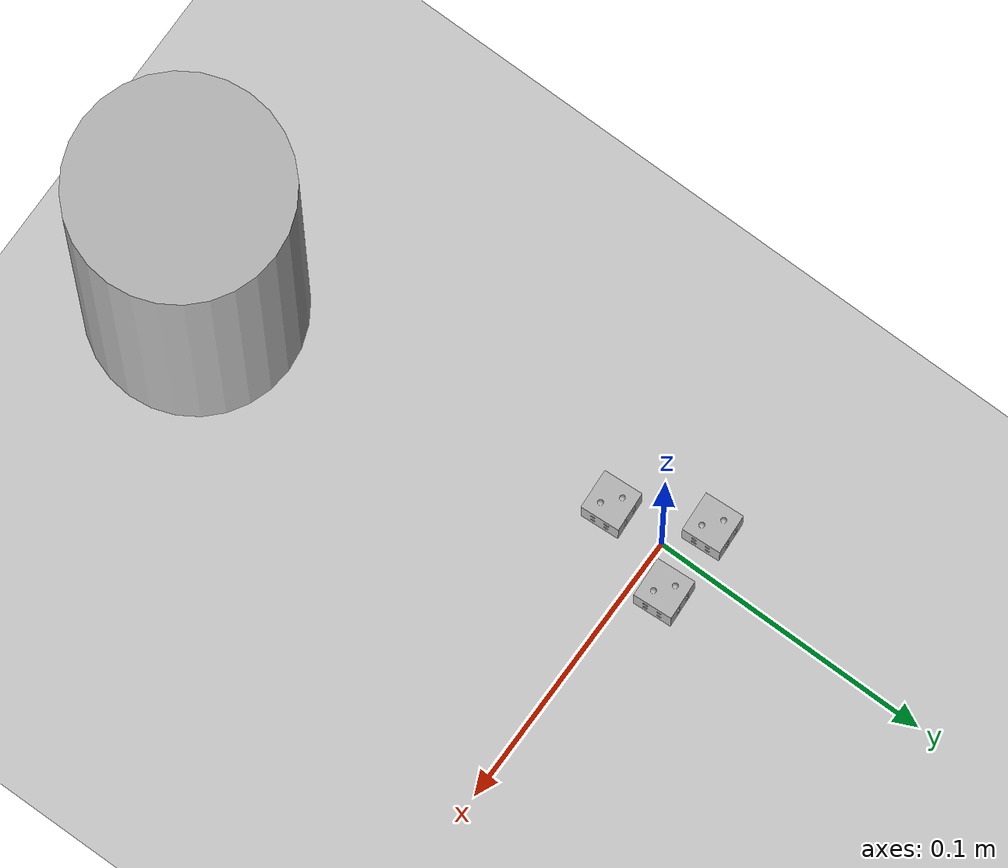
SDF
<sdf version="1.7">
 <world name="default">
  <light name="sun" type="directional">
   <pose>0 0 10 0 -0 0</pose>
   <diffuse>0.8 0.8 0.8 1</diffuse>
   <specular>0.2 0.2 0.2 1</specular>
   <attenuation>
    <range>1000</range>
    <constant>0.9</constant>
    <linear>0.01</linear>
    <quadratic>0.001</quadratic>
   </attenuation>
   <direction>-0.5 0.1 -0.9</direction>
   <spot><inner_angle>0</inner_angle><outer_angle>0</outer_angle><falloff>0</falloff></spot>
  </light>
  <model name="ground_plane">
   <static>1</static>
   <link name="link">
    <collision name="collision">
     <geometry><plane><normal>0 0 1</normal><size>100 100</size></plane></geometry>
     <surface><friction><ode><mu>100</mu><mu2>50</mu2></ode></friction></surface>
    </collision>
    <visual name="visual">
     <cast_shadows>0</cast_shadows>
     <geometry><plane><normal>0 0 1</normal><size>100 100</size></plane></geometry>
     <material>
      <script><uri>file://media/materials/scripts/gazebo.material</uri><name>Gazebo/Grey</name></script>
     </material>
    </visual>
   </link>
  </model>
  <gravity>0 0 -9.8</gravity>
  <magnetic_field>6e-06 2.3e-05 -4.2e-05</magnetic_field>
  <atmosphere type="adiabatic"/>
  <physics type="ode">
   <max_step_size>0.001</max_step_size>
   <real_time_factor>1</real_time_factor>
   <real_time_update_rate>1000</real_time_update_rate>
  </physics>
  <scene><ambient>0.4 0.4 0.4 1</ambient><background>0.7 0.7 0.7 1</background><shadows>1</shadows></scene>
  <spherical_coordinates>
   <surface_model>EARTH_WGS84</surface_model>
   <latitude_deg>0</latitude_deg>
   <longitude_deg>0</longitude_deg>
   <elevation>0</elevation>
   <heading_deg>0</heading_deg>
  </spherical_coordinates>
  <model name="dice1">
   <link name="base_link">
    <inertial>
     <pose>-5e-06 -2.6e-05 0.007015 0 -0 0</pose>
     <mass>0.003213</mass>
     <inertia>
      <ixx>1.0478e-07</ixx>
      <ixy>-3.073e-11</ixy>
      <ixz>-2.5456e-13</ixz>
      <iyy>1.0478e-07</iyy>
      <iyz>2.9881e-11</iyz>
      <izz>1.0474e-07</izz>
     </inertia>
    </inertial>
    <collision name="base_link_collision">
     <geometry>
      <mesh><scale>1 1 1</scale><uri>/home/hp/Proud_hp/src/dice/meshes/base_link.STL</uri></mesh>
     </geometry>
    </collision>
    <visual name="base_link_visual">
     <geometry>
      <mesh><scale>1 1 1</scale><uri>/home/hp/Proud_hp/src/dice/meshes/base_link.STL</uri></mesh>
     </geometry>
    </visual>
   </link>
   <pose>0.000219 -0.019481 -0 7.1e-05 2.9e-05 0.05963</pose>
  </model>
  <model name="dicecup">
   <link name="base_link">
    <inertial>
     <pose>-0 0 0.084782 0 -0 0</pose>
     <mass>0.12057</mass>
     <inertia>
      <ixx>0.00032335</ixx>
      <ixy>1.0942e-36</ixy>
      <ixz>-4.7135e-36</ixz>
      <iyy>0.00032335</iyy>
      <iyz>-1.9326e-20</iyz>
      <izz>0.00010755</izz>
     </inertia>
    </inertial>
    <collision name="base_link_collision">
     <geometry>
      <mesh><scale>1 1 1</scale><uri>/home/hp/Proud_hp/src/dicecup/meshes/base_link.STL</uri></mesh>
     </geometry>
    </collision>
    <visual name="base_link_visual">
     <geometry>
      <mesh><scale>1 1 1</scale><uri>/home/hp/Proud_hp/src/dicecup/meshes/base_link.STL</uri></mesh>
     </geometry>
    </visual>
   </link>
   <pose>0.074429 -0.114735 0.323031 -1.7e-05 -1.6e-05 0.002324</pose>
  </model>
  <model name="dice3">
   <link name="base_link">
    <inertial>
     <pose>-5e-06 -2.6e-05 0.007015 0 -0 0</pose>
     <mass>0.003213</mass>
     <inertia>
      <ixx>1.0478e-07</ixx>
      <ixy>-3.073e-11</ixy>
      <ixz>-2.5456e-13</ixz>
      <iyy>1.0478e-07</iyy>
      <iyz>2.9881e-11</iyz>
      <izz>1.0474e-07</izz>
     </inertia>
    </inertial>
    <collision name="base_link_collision">
     <geometry>
      <mesh><scale>1 1 1</scale><uri>/home/hp/Proud_hp/src/dice/meshes/base_link.STL</uri></mesh>
     </geometry>
    </collision>
    <visual name="base_link_visual">
     <geometry>
      <mesh><scale>1 1 1</scale><uri>/home/hp/Proud_hp/src/dice/meshes/base_link.STL</uri></mesh>
     </geometry>
    </visual>
   </link>
   <pose>-0.012781 0.010519 -2e-06 -0.000233 -0 0.059641</pose>
  </model>
  <model name="dice2">
   <link name="base_link">
    <inertial>
     <pose>-5e-06 -2.6e-05 0.007015 0 -0 0</pose>
     <mass>0.003213</mass>
     <inertia>
      <ixx>1.0478e-07</ixx>
      <ixy>-3.073e-11</ixy>
      <ixz>-2.5456e-13</ixz>
      <iyy>1.0478e-07</iyy>
      <iyz>2.9881e-11</iyz>
      <izz>1.0474e-07</izz>
     </inertia>
    </inertial>
    <collision name="base_link_collision">
     <geometry>
      <mesh><scale>1 1 1</scale><uri>/home/hp/Proud_hp/src/dice/meshes/base_link.STL</uri></mesh>
     </geometry>
    </collision>
    <visual name="base_link_visual">
     <geometry>
      <mesh><scale>1 1 1</scale><uri>/home/hp/Proud_hp/src/dice/meshes/base_link.STL</uri></mesh>
     </geometry>
    </visual>
   </link>
   <pose>0.013219 0.010519 -2e-06 -0.000233 -0 0.059646</pose>
  </model>
 </world>
</sdf>
